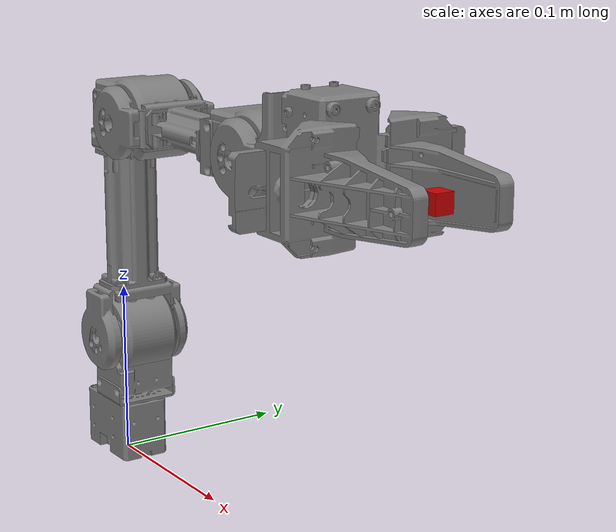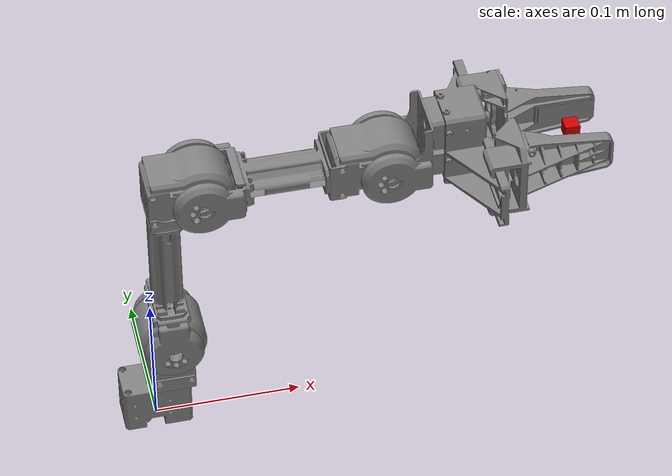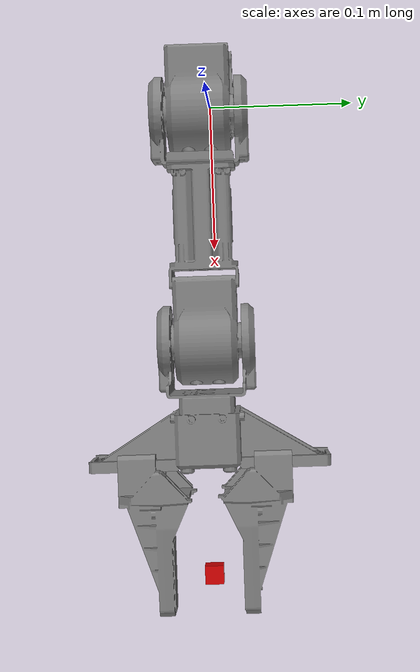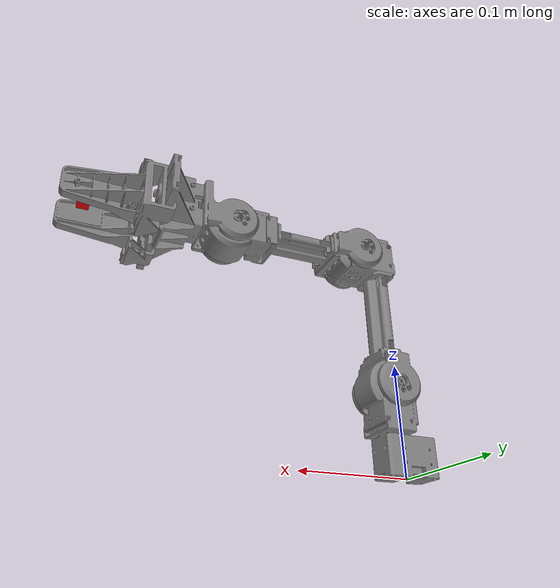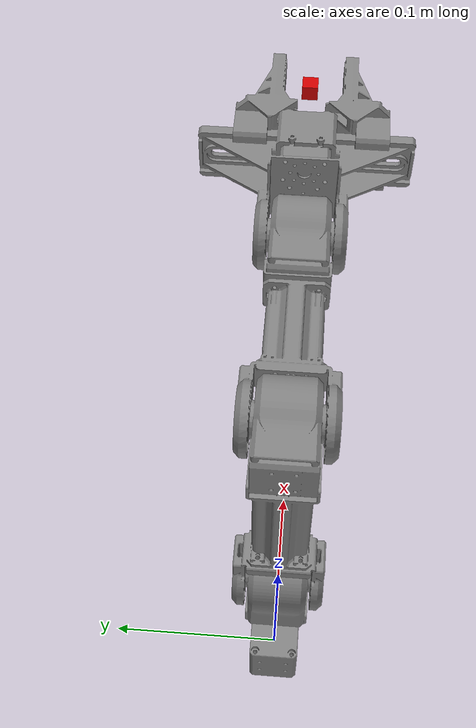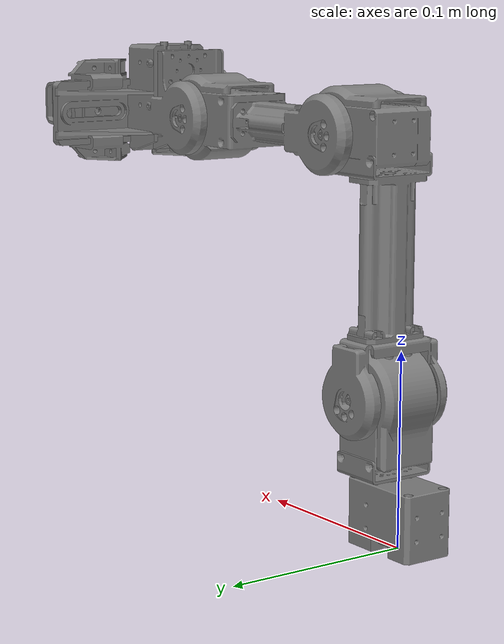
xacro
<?xml version="1.0"?>
<!-- Open_Manipulator Chain -->
<robot name="open_manipulator" xmlns:xacro="http://ros.org/wiki/xacro">

  <!-- Import Rviz colors -->
  <xacro:include filename="$(find open_manipulator_description)/urdf/materials.xacro" />

  <!-- Import all Gazebo-customization elements, including Gazebo colors -->
  <xacro:include filename="$(find open_manipulator_description)/urdf/open_manipulator.gazebo.xacro" />

  <!-- Import Transmission -->
  <xacro:include filename="$(find open_manipulator_description)/urdf/open_manipulator.transmission.xacro" />

  <!-- Import URDF -->
  <xacro:include filename="$(find open_manipulator_description)/urdf/open_manipulator.urdf.xacro" />

  <!-- World -->
  <link name="world"/>

  <!-- World fixed joint-->
  <joint name="world_fixed" type="fixed">
    <origin xyz="0 0 0" rpy="0 0 0"/>
    <parent link="world"/>
    <child link="link1"/>
  </joint>

</robot>

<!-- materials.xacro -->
<robot>

  <material name="black">
    <color rgba="0.0 0.0 0.0 1.0"/>
  </material>

  <material name="white">
    <color rgba="1.0 1.0 1.0 1.0"/>
  </material>

  <material name="red">
    <color rgba="0.8 0.0 0.0 1.0"/>
  </material>

  <material name="blue">
    <color rgba="0.0 0.0 0.8 1.0"/>
  </material>

  <material name="green">
    <color rgba="0.0 0.8 0.0 1.0"/>
  </material>

  <material name="grey">
    <color rgba="0.5 0.5 0.5 1.0"/>
  </material>

  <material name="orange">
    <color rgba="${255/255} ${108/255} ${10/255} 1.0"/>
  </material>

  <material name="brown">
    <color rgba="${222/255} ${207/255} ${195/255} 1.0"/>
  </material>

</robot>

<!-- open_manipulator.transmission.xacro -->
<robot xmlns:xacro="http://ros.org/wiki/xacro">

  <!-- Arg to alternate between effort/position interface -->
  <xacro:arg name="interface_type" default="position"/>
  <xacro:property name="interface_type" value="$(arg interface_type)"/>

  <!-- Transmission macro -->
  <xacro:macro name="SimpleTransmissionPosition" params="joint n">
    <transmission name="tran${n}">
      <type>transmission_interface/SimpleTransmission</type>
      <joint name="${joint}">
        <hardwareInterface>hardware_interface/PositionJointInterface</hardwareInterface>
      </joint>
      <actuator name="motor${n}">
        <mechanicalReduction>1</mechanicalReduction>
      </actuator>
    </transmission>
  </xacro:macro>

  <!-- Transmission macro -->
  <xacro:macro name="SimpleTransmissionEffort" params="joint n">
    <transmission name="tran${n}">
      <type>transmission_interface/SimpleTransmission</type>
      <joint name="${joint}">
        <hardwareInterface>hardware_interface/EffortJointInterface</hardwareInterface>
      </joint>
      <actuator name="motor${n}">
        <mechanicalReduction>1</mechanicalReduction>
      </actuator>
    </transmission>
  </xacro:macro>

  <!-- Transmissions for Effort Interface -->
  <xacro:if value="${interface_type == 'effort'}">
    <!-- Transmission 1 -->
    <xacro:SimpleTransmissionEffort n="1" joint="joint1" />

    <!-- Transmission 2 -->
    <xacro:SimpleTransmissionEffort n="2" joint="joint2" />

    <!-- Transmission 3 -->
    <xacro:SimpleTransmissionEffort n="3" joint="joint3" />

    <!-- Transmission 4 -->
    <xacro:SimpleTransmissionEffort n="4" joint="joint4" />
  </xacro:if>

  <!-- Transmissions for Position Interface -->
  <xacro:if value="${interface_type == 'position'}">
    <!-- Transmission 1 -->
    <xacro:SimpleTransmissionPosition n="1" joint="joint1" />

    <!-- Transmission 2 -->
    <xacro:SimpleTransmissionPosition n="2" joint="joint2" />

    <!-- Transmission 3 -->
    <xacro:SimpleTransmissionPosition n="3" joint="joint3" />

    <!-- Transmission 4 -->
    <xacro:SimpleTransmissionPosition n="4" joint="joint4" />
  </xacro:if>

  <!-- Transmission 5 -->
  <xacro:SimpleTransmissionEffort n="5" joint="gripper" />

  <!-- Transmission 6 -->
  <xacro:SimpleTransmissionEffort n="6" joint="gripper_sub" />

</robot>

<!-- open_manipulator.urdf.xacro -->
<!-- Open_Manipulator Chain -->
<robot xmlns:xacro="http://ros.org/wiki/xacro">

  <!-- Link 1 -->
  <link name="link1">
    <visual>
      <origin xyz="0 0 0" rpy="0 0 0"/>
      <geometry>
        <mesh filename="package://open_manipulator_description/meshes/chain_link1.stl" scale="0.001 0.001 0.001"/>
      </geometry>
      <material name="grey"/>
    </visual>

    <collision>
      <origin xyz="0 0 0" rpy="0 0 0"/>
      <geometry>
        <mesh filename="package://open_manipulator_description/meshes/chain_link1.stl" scale="0.001 0.001 0.001"/>
      </geometry>
    </collision>

    <inertial>
      <origin xyz="3.0876154e-04 0.0000000e+00 -1.2176461e-04" />
      <mass value="7.9119962e-02" />
      <inertia ixx="1.2505234e-05" ixy="0.0" ixz="-1.7855208e-07"
               iyy="2.1898364e-05" iyz="0.0"
               izz="1.9267361e-05" />
    </inertial>
  </link>

  <!-- Joint 1 -->
  <joint name="joint1" type="revolute">
    <parent link="link1"/>
    <child link="link2"/>
    <origin xyz="0.012 0.0 0.017" rpy="0 0 0"/>
    <axis xyz="0 0 1"/>
    <limit velocity="4.8" effort="1" lower="${-pi*0.9}" upper="${pi*0.9}" />
  </joint>

  <!--  Link 2 -->
  <link name="link2">
    <visual>
      <origin xyz="0 0 0.019" rpy="0 0 0"/>
      <geometry>
        <mesh filename="package://open_manipulator_description/meshes/chain_link2.stl" scale="0.001 0.001 0.001"/>
      </geometry>
      <material name="grey"/>
    </visual>

    <collision>
      <origin xyz="0 0 0.019" rpy="0 0 0"/>
      <geometry>
        <mesh filename="package://open_manipulator_description/meshes/chain_link2.stl" scale="0.001 0.001 0.001"/>
      </geometry>
    </collision>

    <inertial>
      <origin xyz="-3.0184870e-04 5.4043684e-04 ${0.018 + 2.9433464e-02}" />
      <mass value="9.8406837e-02" />
      <inertia ixx="3.4543422e-05" ixy="-1.6031095e-08" ixz="-3.8375155e-07"
               iyy="3.2689329e-05" iyz="2.8511935e-08"
               izz="1.8850320e-05" />
    </inertial>
  </link>

  <!--  Joint 2 -->
  <joint name="joint2" type="revolute">
    <parent link="link2"/>
    <child link="link3"/>
    <origin xyz="0.0 0.0 0.0595" rpy="0 0 0"/>
    <axis xyz="0 1 0"/>
    <limit velocity="4.8" effort="1" lower="${-pi*0.57}" upper="${pi*0.5}" />
  </joint>

  <!--  Link 3 -->
  <link name="link3">
    <visual>
      <origin xyz="0 0 0" rpy="0 0 0"/>
      <geometry>
        <mesh filename="package://open_manipulator_description/meshes/chain_link3.stl" scale="0.001 0.001 0.001"/>
      </geometry>
      <material name="grey"/>
    </visual>

    <collision>
      <origin xyz="0 0 0" rpy="0 0 0"/>
      <geometry>
        <mesh filename="package://open_manipulator_description/meshes/chain_link3.stl" scale="0.001 0.001 0.001"/>
      </geometry>
    </collision>

    <inertial>
      <origin xyz="1.0308393e-02 3.7743363e-04 1.0170197e-01" />
      <mass value="1.3850917e-01" />
      <inertia ixx="3.3055381e-04" ixy="-9.7940978e-08" ixz="-3.8505711e-05"
               iyy="3.4290447e-04" iyz="-1.5717516e-06"
               izz="6.0346498e-05" />
    </inertial>
  </link>

  <!--  Joint 3 -->
  <joint name="joint3" type="revolute">
    <parent link="link3"/>
    <child link="link4"/>
    <origin xyz="0.024 0 0.128" rpy="0 0 0"/>
    <axis xyz="0 1 0"/>
    <limit velocity="4.8" effort="1" lower="${-pi*0.3}" upper="${pi*0.44}" />
  </joint>

  <!--  Link 4 -->
  <link name="link4">
    <visual>
      <origin xyz="0 0 0" rpy="0 0 0"/>
      <geometry>
        <mesh filename="package://open_manipulator_description/meshes/chain_link4.stl" scale="0.001 0.001 0.001"/>
      </geometry>
      <material name="grey"/>
    </visual>

    <collision>
      <origin xyz="0 0 0" rpy="0 0 0"/>
      <geometry>
        <mesh filename="package://open_manipulator_description/meshes/chain_link4.stl" scale="0.001 0.001 0.001"/>
      </geometry>
    </collision>

    <inertial>
      <origin xyz="9.0909590e-02 3.8929816e-04 2.2413279e-04" />
      <mass value="1.3274562e-01" />
      <inertia ixx="3.0654178e-05" ixy="-1.2764155e-06" ixz="-2.6874417e-07"
               iyy="2.4230292e-04" iyz="1.1559550e-08"
               izz="2.5155057e-04" />
    </inertial>
  </link>

  <!--  Joint 4 -->
  <joint name="joint4" type="revolute">
    <parent link="link4"/>
    <child link="link5"/>
    <origin xyz="0.124 0.0 0.0" rpy="0 0 0"/>
    <axis xyz="0 1 0"/>
    <limit velocity="4.8" effort="1" lower="${-pi*0.57}" upper="${pi*0.65}" />
  </joint>

  <!--  Link 5 -->
  <link name="link5">
    <visual>
      <origin xyz="0 0 0" rpy="0 0 0"/>
      <geometry>
        <mesh filename="package://open_manipulator_description/meshes/chain_link5.stl" scale="0.001 0.001 0.001"/>
      </geometry>
      <material name="grey"/>
    </visual>

    <collision>
      <origin xyz="0 0 0" rpy="0 0 0"/>
      <geometry>
        <mesh filename="package://open_manipulator_description/meshes/chain_link5.stl" scale="0.001 0.001 0.001"/>
      </geometry>
    </collision>

    <inertial>
      <origin xyz="4.4206755e-02 3.6839985e-07 8.9142216e-03" />
      <mass value="1.4327573e-01" />
      <inertia ixx="8.0870749e-05" ixy="0.0" ixz="-1.0157896e-06"
               iyy="7.5980465e-05" iyz="0.0"
               izz="9.3127351e-05" />
    </inertial>
  </link>

  <!--  Gripper joint -->
  <joint name="gripper" type="prismatic">
    <parent link="link5"/>
    <child link="gripper_link"/>
    <origin xyz="0.0817 0.021 0.0" rpy="0 0 0"/>
    <axis xyz="0 1 0"/>
    <limit velocity="4.8" effort="1" lower="-0.010" upper="0.019" />
  </joint>

  <!--  Gripper link -->
  <link name="gripper_link">
    <visual>
      <origin xyz="0.0 0.0 0" rpy="0 0 0"/>
      <geometry>
        <mesh filename="package://open_manipulator_description/meshes/chain_link_grip_l.stl" scale="0.001 0.001 0.001"/>
      </geometry>
      <material name="grey"/>
    </visual>

    <collision>
      <origin xyz="0.0 0.0 0" rpy="0 0 0"/>
      <geometry>
        <mesh filename="package://open_manipulator_description/meshes/chain_link_grip_l.stl" scale="0.001 0.001 0.001"/>
      </geometry>
    </collision>

    <inertial>
      <origin xyz="0 0 0" />
      <mass value="1.0e-03" />
      <inertia ixx="1.0e-03" ixy="0.0" ixz="0.0"
               iyy="1.0e-03" iyz="0.0"
               izz="1.0e-03" />
    </inertial>
  </link>

  <!--  Gripper joint sub -->
  <joint name="gripper_sub" type="prismatic">
    <parent link="link5"/>
    <child link="gripper_link_sub"/>
    <origin xyz="0.0817 -0.021 0" rpy="0 0 0"/>
    <axis xyz="0 -1 0"/>
    <limit velocity="4.8" effort="1" lower="-0.010" upper="0.019" />
    <mimic joint="gripper" multiplier="1"/>
  </joint>

  <!--  Gripper link sub -->
  <link name="gripper_link_sub">
    <visual>
      <origin xyz="0.0 -0.0 0" rpy="0 0 0"/>
      <geometry>
        <mesh filename="package://open_manipulator_description/meshes/chain_link_grip_r.stl" scale="0.001 0.001 0.001"/>
      </geometry>
      <material name="grey"/>
    </visual>

    <collision>
      <origin xyz="0.0 -0.0 0" rpy="0 0 0"/>
      <geometry>
        <mesh filename="package://open_manipulator_description/meshes/chain_link_grip_r.stl" scale="0.001 0.001 0.001"/>
      </geometry>
    </collision>

    <inertial>
      <origin xyz="0 0 0" />
      <mass value="1.0e-03" />
      <inertia ixx="1.0e-03" ixy="0.0" ixz="0.0"
               iyy="1.0e-03" iyz="0.0"
               izz="1.0e-03" />
    </inertial>
  </link>

  <!-- end effector joint -->
  <joint name="end_effector_joint" type="fixed">
    <origin xyz="0.126 0.0 0.0" rpy="0 0 0"/>
    <parent link="link5"/>
    <child link="end_effector_link"/>
  </joint>

  <!-- end effector link -->
  <link name="end_effector_link">
    <visual>
      <origin xyz="0 0 0" rpy="0 0 0"/>
      <geometry>
        <box size="0.01 0.01 0.01" />
      </geometry>
      <material name="red"/>
     </visual>

    <inertial>
      <origin xyz="0 0 0" />
      <mass value="1.0e-03" />
      <inertia ixx="1.0e-03" ixy="0.0" ixz="0.0"
               iyy="1.0e-03" iyz="0.0"
               izz="1.0e-03" />
    </inertial>
  </link>

  <!-- Realsense Camera Joint Position -->

</robot>
